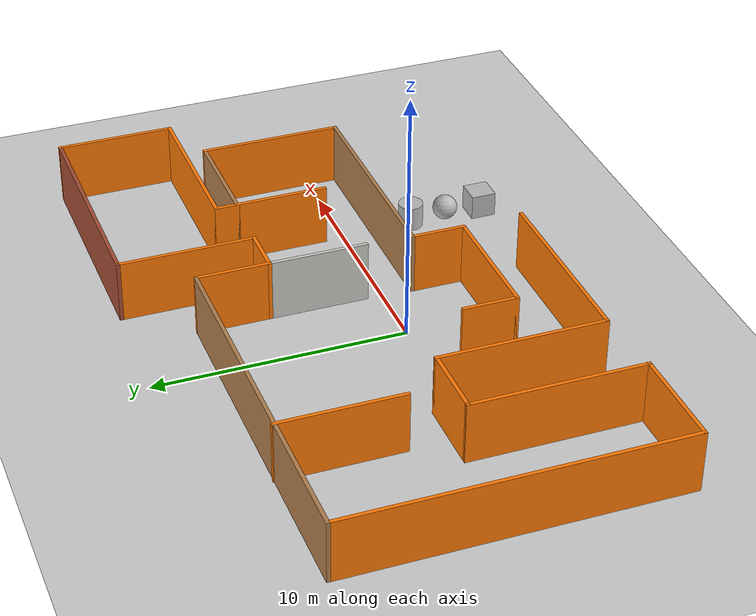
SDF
<sdf version="1.7">
 <world name="default">
  <light name="sun" type="directional">
   <pose>0 0 10 0 -0 0</pose>
   <diffuse>0.8 0.8 0.8 1</diffuse>
   <specular>0.2 0.2 0.2 1</specular>
   <attenuation>
    <range>1000</range>
    <constant>0.9</constant>
    <linear>0.01</linear>
    <quadratic>0.001</quadratic>
   </attenuation>
   <direction>-0.5 0.1 -0.9</direction>
   <spot><inner_angle>0</inner_angle><outer_angle>0</outer_angle><falloff>0</falloff></spot>
  </light>
  <model name="ground_plane">
   <static>1</static>
   <link name="link">
    <collision name="collision">
     <geometry><plane><normal>0 0 1</normal><size>100 100</size></plane></geometry>
     <surface>
      <contact><collide_bitmask>65535</collide_bitmask></contact>
      <friction><ode><mu>100</mu><mu2>50</mu2></ode></friction>
     </surface>
    </collision>
    <visual name="visual">
     <cast_shadows>0</cast_shadows>
     <geometry><plane><normal>0 0 1</normal><size>100 100</size></plane></geometry>
     <material>
      <script><uri>file://media/materials/scripts/gazebo.material</uri><name>Gazebo/Grey</name></script>
     </material>
    </visual>
   </link>
  </model>
  <gravity>0 0 -9.8</gravity>
  <magnetic_field>6e-06 2.3e-05 -4.2e-05</magnetic_field>
  <atmosphere type="adiabatic"/>
  <physics type="ode">
   <max_step_size>0.001</max_step_size>
   <real_time_factor>1</real_time_factor>
   <real_time_update_rate>1000</real_time_update_rate>
  </physics>
  <scene><ambient>0.4 0.4 0.4 1</ambient><background>0.7 0.7 0.7 1</background><shadows>1</shadows></scene>
  <spherical_coordinates>
   <surface_model>EARTH_WGS84</surface_model>
   <latitude_deg>0</latitude_deg>
   <longitude_deg>0</longitude_deg>
   <elevation>0</elevation>
   <heading_deg>0</heading_deg>
  </spherical_coordinates>
  <model name="myWorls">
   <pose>0.894138 1.8988 0 0 -0 0</pose>
   <link name="Wall_0">
    <collision name="Wall_0_Collision">
     <geometry><box><size>2.25 0.15 2.5</size></box></geometry>
     <pose>0 0 1.25 0 -0 0</pose>
    </collision>
    <visual name="Wall_0_Visual">
     <pose>0 0 1.25 0 -0 0</pose>
     <geometry><box><size>2.25 0.15 2.5</size></box></geometry>
     <material>
      <script><uri>file://media/materials/scripts/gazebo.material</uri><name>Gazebo/Grey</name></script>
      <ambient>0.996078 0.47451 0.0196078 1</ambient>
     </material>
     <meta><layer>0</layer></meta>
    </visual>
    <pose>-3.39126 -4.175 0 0 -0 -1.5708</pose>
   </link>
   <link name="Wall_1">
    <collision name="Wall_1_Collision">
     <geometry><box><size>5.25 0.15 2.5</size></box></geometry>
     <pose>0 0 1.25 0 -0 0</pose>
    </collision>
    <visual name="Wall_1_Visual">
     <pose>0 0 1.25 0 -0 0</pose>
     <geometry><box><size>5.25 0.15 2.5</size></box></geometry>
     <material>
      <script><uri>file://media/materials/scripts/gazebo.material</uri><name>Gazebo/Grey</name></script>
      <ambient>0.996078 0.47451 0.0196078 1</ambient>
     </material>
     <meta><layer>0</layer></meta>
    </visual>
    <pose>-0.841262 -5.225 0 0 -0 0</pose>
   </link>
   <link name="Wall_10">
    <collision name="Wall_10_Collision">
     <geometry><box><size>4.5 0.15 2.5</size></box></geometry>
     <pose>0 0 1.25 0 -0 0</pose>
    </collision>
    <visual name="Wall_10_Visual">
     <pose>0 0 1.25 0 -0 0</pose>
     <geometry><box><size>4.5 0.15 2.5</size></box></geometry>
     <material>
      <script><uri>file://media/materials/scripts/gazebo.material</uri><name>Gazebo/Wood</name></script>
      <ambient>0.996078 0.47451 0.0196078 1</ambient>
     </material>
     <meta><layer>0</layer></meta>
    </visual>
    <pose>8.35 2.475 0 0 -0 3.14159</pose>
   </link>
   <link name="Wall_11">
    <collision name="Wall_11_Collision">
     <geometry><box><size>1 0.15 2.5</size></box></geometry>
     <pose>0 0 1.25 0 -0 0</pose>
    </collision>
    <visual name="Wall_11_Visual">
     <pose>0 0 1.25 0 -0 0</pose>
     <geometry><box><size>1 0.15 2.5</size></box></geometry>
     <material>
      <script><uri>file://media/materials/scripts/gazebo.material</uri><name>Gazebo/Grey</name></script>
      <ambient>0.996078 0.47451 0.0196078 1</ambient>
     </material>
     <meta><layer>0</layer></meta>
    </visual>
    <pose>6.175 2.9 0 0 -0 1.5708</pose>
   </link>
   <link name="Wall_12">
    <collision name="Wall_12_Collision">
     <geometry><box><size>6.75 0.15 2.5</size></box></geometry>
     <pose>0 0 1.25 0 -0 0</pose>
    </collision>
    <visual name="Wall_12_Visual">
     <pose>0 0 1.25 0 -0 0</pose>
     <geometry><box><size>6.75 0.15 2.5</size></box></geometry>
     <material>
      <script><uri>file://media/materials/scripts/gazebo.material</uri><name>Gazebo/Grey</name></script>
      <ambient>0.996078 0.47451 0.0196078 1</ambient>
     </material>
     <meta><layer>0</layer></meta>
    </visual>
    <pose>9.475 3.325 0 0 -0 0</pose>
   </link>
   <link name="Wall_13">
    <collision name="Wall_13_Collision">
     <geometry><box><size>4.75 0.15 2.5</size></box></geometry>
     <pose>0 0 1.25 0 -0 0</pose>
    </collision>
    <visual name="Wall_13_Visual">
     <pose>0 0 1.25 0 -0 0</pose>
     <geometry><box><size>4.75 0.15 2.5</size></box></geometry>
     <material>
      <script><uri>file://media/materials/scripts/gazebo.material</uri><name>Gazebo/Grey</name></script>
      <ambient>0.996078 0.47451 0.0196078 1</ambient>
     </material>
     <meta><layer>0</layer></meta>
    </visual>
    <pose>12.775 5.625 0 0 -0 1.5708</pose>
   </link>
   <link name="Wall_16">
    <collision name="Wall_16_Collision">
     <geometry><box><size>9.25 0.15 2.5</size></box></geometry>
     <pose>0 0 1.25 0 -0 0</pose>
    </collision>
    <visual name="Wall_16_Visual">
     <pose>0 0 1.25 0 -0 0</pose>
     <geometry><box><size>9.25 0.15 2.5</size></box></geometry>
     <material>
      <script><uri>file://media/materials/scripts/gazebo.material</uri><name>Gazebo/Bricks</name></script>
      <ambient>0.996078 0.47451 0.0196078 1</ambient>
     </material>
     <meta><layer>0</layer></meta>
    </visual>
    <pose>8.225 7.925 0 0 -0 3.14159</pose>
   </link>
   <link name="Wall_17">
    <collision name="Wall_17_Collision">
     <geometry><box><size>5.5 0.15 2.5</size></box></geometry>
     <pose>0 0 1.25 0 -0 0</pose>
    </collision>
    <visual name="Wall_17_Visual">
     <pose>0 0 1.25 0 -0 0</pose>
     <geometry><box><size>5.5 0.15 2.5</size></box></geometry>
     <material>
      <script><uri>file://media/materials/scripts/gazebo.material</uri><name>Gazebo/Grey</name></script>
      <ambient>0.996078 0.47451 0.0196078 1</ambient>
     </material>
     <meta><layer>0</layer></meta>
    </visual>
    <pose>3.675 5.25 0 0 -0 -1.5708</pose>
   </link>
   <link name="Wall_18">
    <collision name="Wall_18_Collision">
     <geometry><box><size>2 0.15 2.5</size></box></geometry>
     <pose>0 0 1.25 0 -0 0</pose>
    </collision>
    <visual name="Wall_18_Visual">
     <pose>0 0 1.25 0 -0 0</pose>
     <geometry><box><size>2 0.15 2.5</size></box></geometry>
     <material>
      <script><uri>file://media/materials/scripts/gazebo.material</uri><name>Gazebo/Grey</name></script>
      <ambient>0.996078 0.47451 0.0196078 1</ambient>
     </material>
     <meta><layer>0</layer></meta>
    </visual>
    <pose>2.75 2.575 0 0 -0 3.14159</pose>
   </link>
   <link name="Wall_19">
    <collision name="Wall_19_Collision">
     <geometry><box><size>3 0.15 2.5</size></box></geometry>
     <pose>0 0 1.25 0 -0 0</pose>
    </collision>
    <visual name="Wall_19_Visual">
     <pose>0 0 1.25 0 -0 0</pose>
     <geometry><box><size>3 0.15 2.5</size></box></geometry>
     <material>
      <script><uri>file://media/materials/scripts/gazebo.material</uri><name>Gazebo/Grey</name></script>
      <ambient>0.996078 0.47451 0.0196078 1</ambient>
     </material>
     <meta><layer>0</layer></meta>
    </visual>
    <pose>1.825 4 0 0 -0 1.5708</pose>
   </link>
   <link name="Wall_2">
    <collision name="Wall_2_Collision">
     <geometry><box><size>2.25 0.15 2.5</size></box></geometry>
     <pose>0 0 1.25 0 -0 0</pose>
    </collision>
    <visual name="Wall_2_Visual">
     <pose>0 0 1.25 0 -0 0</pose>
     <geometry><box><size>2.25 0.15 2.5</size></box></geometry>
     <material>
      <script><uri>file://media/materials/scripts/gazebo.material</uri><name>Gazebo/Grey</name></script>
      <ambient>0.996078 0.47451 0.0196078 1</ambient>
     </material>
     <meta><layer>0</layer></meta>
    </visual>
    <pose>1.70874 -4.175 0 0 -0 1.5708</pose>
   </link>
   <link name="Wall_20">
    <collision name="Wall_20_Collision">
     <geometry><box><size>14.75 0.15 2.5</size></box></geometry>
     <pose>0 0 1.25 0 -0 0</pose>
    </collision>
    <visual name="Wall_20_Visual">
     <pose>0 0 1.25 0 -0 0</pose>
     <geometry><box><size>14.75 0.15 2.5</size></box></geometry>
     <material>
      <script><uri>file://media/materials/scripts/gazebo.material</uri><name>Gazebo/Wood</name></script>
      <ambient>0.996078 0.47451 0.0196078 1</ambient>
     </material>
     <meta><layer>0</layer></meta>
    </visual>
    <pose>-5.475 5.425 0 0 -0 3.14159</pose>
   </link>
   <link name="Wall_21">
    <collision name="Wall_21_Collision">
     <geometry><box><size>13.5 0.15 2.5</size></box></geometry>
     <pose>0 0 1.25 0 -0 0</pose>
    </collision>
    <visual name="Wall_21_Visual">
     <pose>0 0 1.25 0 -0 0</pose>
     <geometry><box><size>13.5 0.15 2.5</size></box></geometry>
     <material>
      <script><uri>file://media/materials/scripts/gazebo.material</uri><name>Gazebo/Grey</name></script>
      <ambient>0.996078 0.47451 0.0196078 1</ambient>
     </material>
     <meta><layer>0</layer></meta>
    </visual>
    <pose>-12.775 -1.25 0 0 -0 -1.5708</pose>
   </link>
   <link name="Wall_22">
    <collision name="Wall_22_Collision">
     <geometry><box><size>4.25 0.15 2.5</size></box></geometry>
     <pose>0 0 1.25 0 -0 0</pose>
    </collision>
    <visual name="Wall_22_Visual">
     <pose>0 0 1.25 0 -0 0</pose>
     <geometry><box><size>4.25 0.15 2.5</size></box></geometry>
     <material>
      <script><uri>file://media/materials/scripts/gazebo.material</uri><name>Gazebo/Grey</name></script>
      <ambient>0.996078 0.47451 0.0196078 1</ambient>
     </material>
     <meta><layer>0</layer></meta>
    </visual>
    <pose>-10.725 -7.925 0 0 -0 0</pose>
   </link>
   <link name="Wall_23">
    <collision name="Wall_23_Collision">
     <geometry><box><size>7 0.15 2.5</size></box></geometry>
     <pose>0 0 1.25 0 -0 0</pose>
    </collision>
    <visual name="Wall_23_Visual">
     <pose>0 0 1.25 0 -0 0</pose>
     <geometry><box><size>7 0.15 2.5</size></box></geometry>
     <material>
      <script><uri>file://media/materials/scripts/gazebo.material</uri><name>Gazebo/Grey</name></script>
      <ambient>0.996078 0.47451 0.0196078 1</ambient>
     </material>
     <meta><layer>0</layer></meta>
    </visual>
    <pose>-8.675 -4.5 0 0 -0 1.5708</pose>
   </link>
   <link name="Wall_24">
    <collision name="Wall_24_Collision">
     <geometry><box><size>3 0.15 2.5</size></box></geometry>
     <pose>0 0 1.25 0 -0 0</pose>
    </collision>
    <visual name="Wall_24_Visual">
     <pose>0 0 1.25 0 -0 0</pose>
     <geometry><box><size>3 0.15 2.5</size></box></geometry>
     <material>
      <script><uri>file://media/materials/scripts/gazebo.material</uri><name>Gazebo/Grey</name></script>
      <ambient>0.996078 0.47451 0.0196078 1</ambient>
     </material>
     <meta><layer>0</layer></meta>
    </visual>
    <pose>-7.25 -1.075 0 0 -0 0</pose>
   </link>
   <link name="Wall_25">
    <collision name="Wall_25_Collision">
     <geometry><box><size>6.75 0.15 2.5</size></box></geometry>
     <pose>0 0 1.25 0 -0 0</pose>
    </collision>
    <visual name="Wall_25_Visual">
     <pose>0 0 1.25 0 -0 0</pose>
     <geometry><box><size>6.75 0.15 2.5</size></box></geometry>
     <material>
      <script><uri>file://media/materials/scripts/gazebo.material</uri><name>Gazebo/Grey</name></script>
      <ambient>0.996078 0.47451 0.0196078 1</ambient>
     </material>
     <meta><layer>0</layer></meta>
    </visual>
    <pose>-5.825 -4.375 0 0 -0 -1.5708</pose>
   </link>
   <link name="Wall_26">
    <collision name="Wall_26_Collision">
     <geometry><box><size>7.75 0.15 2.5</size></box></geometry>
     <pose>0 0 1.25 0 -0 0</pose>
    </collision>
    <visual name="Wall_26_Visual">
     <pose>0 0 1.25 0 -0 0</pose>
     <geometry><box><size>7.75 0.15 2.5</size></box></geometry>
     <material>
      <script><uri>file://media/materials/scripts/gazebo.material</uri><name>Gazebo/Grey</name></script>
      <ambient>0.996078 0.47451 0.0196078 1</ambient>
     </material>
     <meta><layer>0</layer></meta>
    </visual>
    <pose>-2.025 -7.675 0 0 -0 0</pose>
   </link>
   <link name="Wall_28">
    <collision name="Wall_28_Collision">
     <geometry><box><size>5 0.15 2.5</size></box></geometry>
     <pose>0 0 1.25 0 -0 0</pose>
    </collision>
    <visual name="Wall_28_Visual">
     <pose>0 0 1.25 0 -0 0</pose>
     <geometry><box><size>5 0.15 2.5</size></box></geometry>
     <material>
      <script><uri>file://media/materials/scripts/gazebo.material</uri><name>Gazebo/Grey</name></script>
      <ambient>0.996078 0.47451 0.0196078 1</ambient>
     </material>
     <meta><layer>0</layer></meta>
    </visual>
    <pose>-7.42234 3.03827 0 0 -0 -1.5708</pose>
   </link>
   <link name="Wall_3">
    <collision name="Wall_3_Collision">
     <geometry><box><size>8.96689 0.15 2.5</size></box></geometry>
     <pose>0 0 1.25 0 -0 0</pose>
    </collision>
    <visual name="Wall_3_Visual">
     <pose>0 0 1.25 0 -0 0</pose>
     <geometry><box><size>8.96689 0.15 2.5</size></box></geometry>
     <material>
      <script><uri>file://media/materials/scripts/gazebo.material</uri><name>Gazebo/Wood</name></script>
      <ambient>0.996078 0.47451 0.0196078 1</ambient>
     </material>
     <meta><layer>0</layer></meta>
    </visual>
    <pose>6.11687 -3.125 0 0 -0 0</pose>
   </link>
   <link name="Wall_30">
    <collision name="Wall_30_Collision">
     <geometry><box><size>4 0.15 2.5</size></box></geometry>
     <pose>0 0 1.25 0 -0 0</pose>
    </collision>
    <visual name="Wall_30_Visual">
     <pose>0 0 1.25 0 -0 0</pose>
     <geometry><box><size>4 0.15 2.5</size></box></geometry>
     <material>
      <script><uri>file://media/materials/scripts/gazebo.material</uri><name>Gazebo/CeilingTiled</name></script>
      <ambient>0.996078 0.47451 0.0196078 1</ambient>
     </material>
     <meta><layer>0</layer></meta>
    </visual>
    <pose>1.825 0.650001 0 0 -0 -1.5708</pose>
   </link>
   <link name="Wall_32">
    <collision name="Wall_32_Collision">
     <geometry><box><size>3.75 0.15 2.5</size></box></geometry>
     <pose>0 0 1.25 0 -0 0</pose>
    </collision>
    <visual name="Wall_32_Visual">
     <pose>0 0 1.25 0 -0 0</pose>
     <geometry><box><size>3.75 0.15 2.5</size></box></geometry>
     <material>
      <script><uri>file://media/materials/scripts/gazebo.material</uri><name>Gazebo/Grey</name></script>
      <ambient>0.996078 0.47451 0.0196078 1</ambient>
     </material>
     <meta><layer>0</layer></meta>
    </visual>
    <pose>6.175 0.675 0 0 -0 -1.5708</pose>
   </link>
   <link name="Wall_9">
    <collision name="Wall_9_Collision">
     <geometry><box><size>5.75 0.15 2.5</size></box></geometry>
     <pose>0 0 1.25 0 -0 0</pose>
    </collision>
    <visual name="Wall_9_Visual">
     <pose>0 0 1.25 0 -0 0</pose>
     <geometry><box><size>5.75 0.15 2.5</size></box></geometry>
     <material>
      <script><uri>file://media/materials/scripts/gazebo.material</uri><name>Gazebo/Grey</name></script>
      <ambient>0.996078 0.47451 0.0196078 1</ambient>
     </material>
     <meta><layer>0</layer></meta>
    </visual>
    <pose>10.525 -0.325 0 0 -0 1.5708</pose>
   </link>
   <static>1</static>
  </model>
  <model name="textured_shapes">
   <pose>7.06403 -4.41439 0.5 0 -0 0</pose>
   <link name="box">
    <pose>0 -1.5 0 0 -0 0</pose>
    <collision name="collision"><geometry><box><size>1 1 1</size></box></geometry></collision>
    <visual name="visual">
     <geometry><box><size>1 1 1</size></box></geometry>
     <material>
      <script>
       <uri>model://textured_shapes/materials/scripts</uri>
       <uri>model://textured_shapes/materials/textures</uri>
       <name>TexturedShape/Squares</name>
      </script>
     </material>
    </visual>
    <inertial>
     <inertia><ixx>1</ixx><ixy>0</ixy><ixz>0</ixz><iyy>1</iyy><iyz>0</iyz><izz>1</izz></inertia>
     <mass>1</mass>
    </inertial>
   </link>
   <link name="sphere">
    <collision name="collision"><geometry><sphere><radius>0.5</radius></sphere></geometry></collision>
    <visual name="visual">
     <geometry><sphere><radius>0.5</radius></sphere></geometry>
     <material>
      <script>
       <uri>model://textured_shapes/materials/scripts</uri>
       <uri>model://textured_shapes/materials/textures</uri>
       <name>TexturedShape/Squares</name>
      </script>
     </material>
    </visual>
    <inertial>
     <inertia><ixx>1</ixx><ixy>0</ixy><ixz>0</ixz><iyy>1</iyy><iyz>0</iyz><izz>1</izz></inertia>
     <mass>1</mass>
    </inertial>
   </link>
   <link name="cylinder">
    <pose>0 1.5 0 0 -0 0</pose>
    <collision name="collision">
     <geometry><cylinder><radius>0.5</radius><length>1</length></cylinder></geometry>
    </collision>
    <visual name="visual">
     <geometry><cylinder><radius>0.5</radius><length>1</length></cylinder></geometry>
     <material>
      <script>
       <uri>model://textured_shapes/materials/scripts</uri>
       <uri>model://textured_shapes/materials/textures</uri>
       <name>TexturedShape/Squares</name>
      </script>
     </material>
    </visual>
    <inertial>
     <inertia><ixx>1</ixx><ixy>0</ixy><ixz>0</ixz><iyy>1</iyy><iyz>0</iyz><izz>1</izz></inertia>
     <mass>1</mass>
    </inertial>
   </link>
  </model>
 </world>
</sdf>
